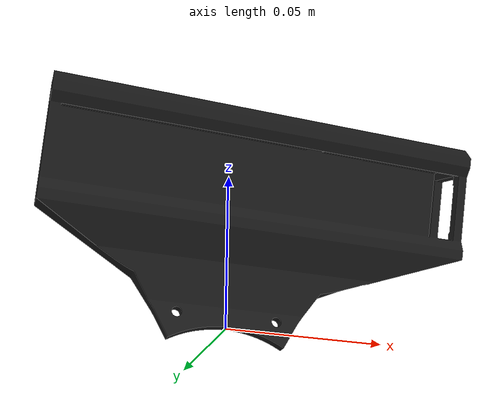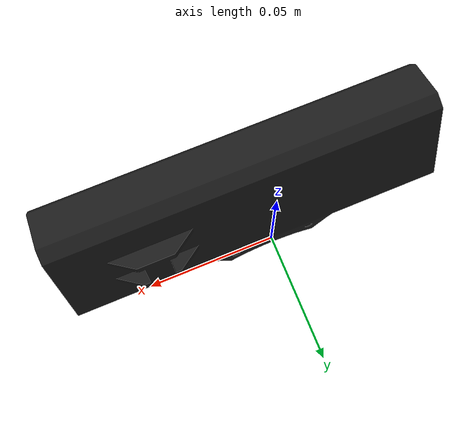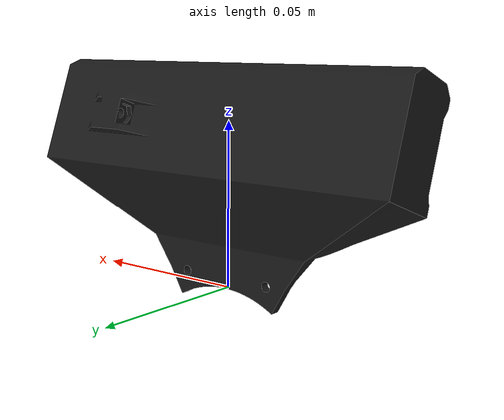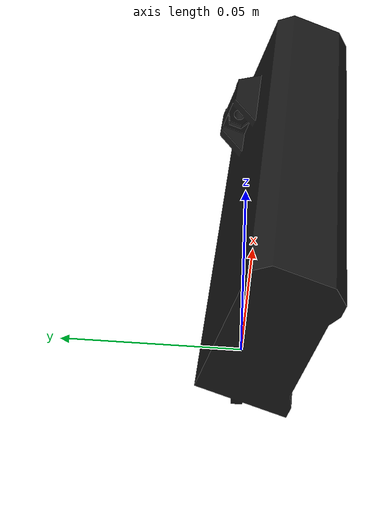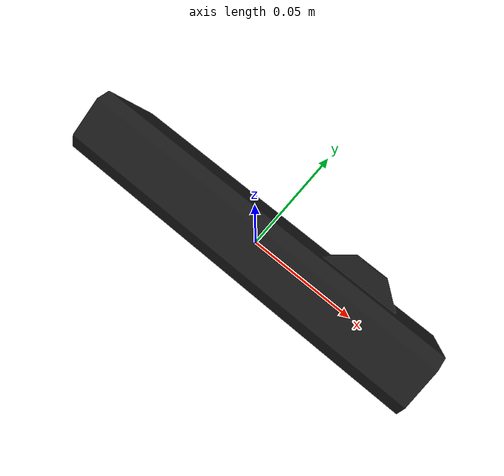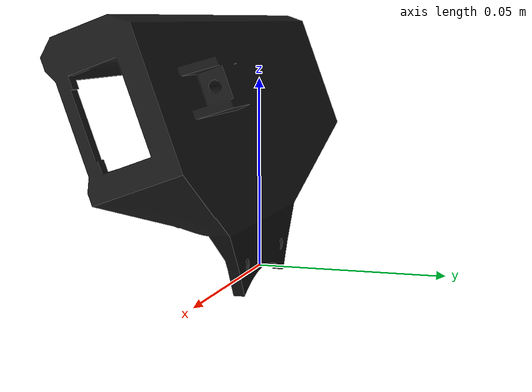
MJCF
<mujoco model="wrist_camera_setup">
  <compiler angle="radian" meshdir="assets" autolimits="true"/>

  <option cone="elliptic" impratio="10"/>

  <asset>
    <material name="black" rgba="0.1 0.1 0.1 1"/>
    <mesh name="wrist_camera_setup" file="camera_mount.obj" scale="0.01 0.01 0.01"/>
    <mesh name="wrist_camera_setup_collision" file="camera_mount.stl" scale="0.01 0.01 0.01"/>
  </asset>

  <default>
    <default class="wrist_camera_setup">
      <default class="visual">
        <geom type="mesh" contype="0" conaffinity="0" group="2" material="black"/>
      </default>
      <default class="collision">
        <geom type="mesh" group="3"/>
      </default>
    </default>
  </default>

  <worldbody>
    <body name="base" childclass="wrist_camera_setup">
      <geom mesh="wrist_camera_setup" quat="1 0 0 0" material="black" class="visual" mass="0"/>
      <!-- Real measured mass 47.7 g; COM/inertia derived from the mesh at this mass. -->
      <geom mesh="wrist_camera_setup_collision" quat="1 0 0 0" material="black" class="collision" mass="0.0477"/>
    </body>
  </worldbody>

</mujoco>
